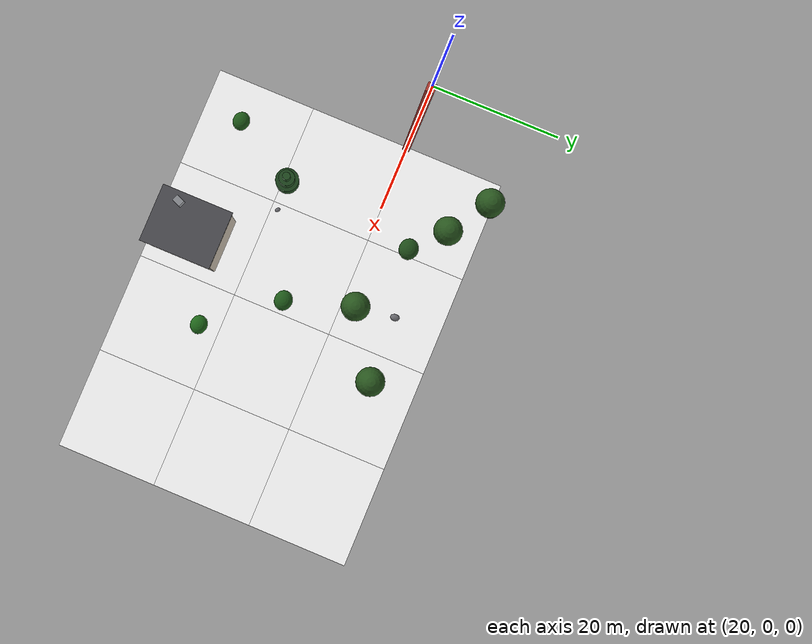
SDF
<sdf version="1.9">
 <world name="iris_runway">
  <model name="ground">
   <static>true</static>
   <link name="link">
    <collision name="c">
     <geometry><plane><normal>0 0 1</normal><size>2000 2000</size></plane></geometry>
    </collision>
   </link>
  </model>
  <include>
   <name>g_8_4</name>
   <pose degrees="true">37.5 -22.5 0.01 0 0 90</pose>
   <uri>model://grass_tile</uri>
  </include>
  <include>
   <name>g_8_5</name>
   <pose degrees="true">37.5 -7.5 0.01 0 0 270</pose>
   <uri>model://grass_tile</uri>
  </include>
  <include>
   <name>g_8_6</name>
   <pose degrees="true">37.5 7.5 0.01 0 0 90</pose>
   <uri>model://grass_tile</uri>
  </include>
  <include>
   <name>g_9_4</name>
   <pose degrees="true">52.5 -22.5 0.01 0 0 270</pose>
   <uri>model://grass_tile</uri>
  </include>
  <include>
   <name>g_9_5</name>
   <pose degrees="true">52.5 -7.5 0.01 0 0 90</pose>
   <uri>model://grass_tile</uri>
  </include>
  <include>
   <name>g_9_6</name>
   <pose degrees="true">52.5 7.5 0.01 0 0 270</pose>
   <uri>model://grass_tile_worn</uri>
  </include>
  <include>
   <name>g_10_4</name>
   <pose degrees="true">67.5 -22.5 0.01 0 0 90</pose>
   <uri>model://grass_tile</uri>
  </include>
  <include>
   <name>g_10_5</name>
   <pose degrees="true">67.5 -7.5 0.01 0 0 270</pose>
   <uri>model://grass_tile</uri>
  </include>
  <include>
   <name>g_10_6</name>
   <pose degrees="true">67.5 7.5 0.01 0 0 90</pose>
   <uri>model://grass_tile_worn</uri>
  </include>
  <include>
   <name>g_11_4</name>
   <pose degrees="true">82.5 -22.5 0.01 0 0 0</pose>
   <uri>model://grass_tile</uri>
  </include>
  <include>
   <name>g_11_5</name>
   <pose degrees="true">82.5 -7.5 0.01 0 0 180</pose>
   <uri>model://grass_tile</uri>
  </include>
  <include>
   <name>g_11_6</name>
   <pose degrees="true">82.5 7.5 0.01 0 0 0</pose>
   <uri>model://grass_tile</uri>
  </include>
  <include><name>tree_4</name><pose>40 10 0 0 0 2.8</pose><uri>model://tree_oak</uri></include>
  <include><name>tree_5</name><pose>42 -14 0 0 0 0.4</pose><uri>model://tree_pine</uri></include>
  <include><name>tree_14</name><pose>55 2 0 0 0 0.5</pose><uri>model://tree_oak</uri></include>
  <include><name>tree_24</name><pose>34 14 0 0 0 1.3</pose><uri>model://tree_oak</uri></include>
  <include><name>tree_32</name><pose>64 8 0 0 0 0.7</pose><uri>model://tree_oak</uri></include>
  <model name="bldg_14">
   <static>true</static>
   <pose>54 -24 0 0 0 0</pose>
   <link name="l">
    <visual name="walls">
     <pose degrees="true">0 0 3.5 0 0 0</pose>
     <geometry><box><size>8 10 7</size></box></geometry>
     <material>
      <ambient>0.39 0.36 0.33 1</ambient>
      <diffuse>0.70 0.66 0.60 1</diffuse>
      <pbr><metal><roughness>0.85</roughness><metalness>0.0</metalness></metal></pbr>
     </material>
    </visual>
    <visual name="roof">
     <pose degrees="true">0 0 7.15 0 0 0</pose>
     <geometry><box><size>8.5 10.5 0.3</size></box></geometry>
     <material>
      <ambient>0.17 0.17 0.18 1</ambient>
      <diffuse>0.30 0.30 0.32 1</diffuse>
      <pbr><metal><roughness>0.9</roughness><metalness>0.0</metalness></metal></pbr>
     </material>
    </visual>
    <collision name="c">
     <pose>0 0 3.65 0 0 0</pose>
     <geometry><box><size>8 10 7.3</size></box></geometry>
    </collision>
    <visual name="ac_0">
     <pose degrees="true">-2.8 -2.2 7.75 0 0 68</pose>
     <geometry><box><size>1.3 1.0 0.9</size></box></geometry>
     <material>
      <ambient>0.30 0.31 0.32 1</ambient>
      <diffuse>0.55 0.56 0.58 1</diffuse>
      <pbr><metal><roughness>0.5</roughness><metalness>0.6</metalness></metal></pbr>
     </material>
    </visual>
   </link>
  </model>
  <model name="tower_0">
   <static>true</static>
   <pose>30 0 0 0 0 0</pose>
   <link name="l">
    <visual name="mast">
     <pose degrees="true">0 0 14.0 0 0 0</pose>
     <geometry><box><size>1.1 1.1 28.0</size></box></geometry>
     <material>
      <ambient>0.40 0.13 0.11 1</ambient>
      <diffuse>0.72 0.24 0.20 1</diffuse>
      <pbr><metal><roughness>0.6</roughness><metalness>0.4</metalness></metal></pbr>
     </material>
    </visual>
    <collision name="c">
     <pose>0 0 14.0 0 0 0</pose>
     <geometry><box><size>1.3 1.3 28.0</size></box></geometry>
    </collision>
    <visual name="arm_0">
     <pose degrees="true">0 0 9.799999999999999 0 0 0</pose>
     <geometry><box><size>4.0 0.35 0.35</size></box></geometry>
     <material>
      <ambient>0.47 0.47 0.48 1</ambient>
      <diffuse>0.85 0.86 0.88 1</diffuse>
      <pbr><metal><roughness>0.6</roughness><metalness>0.4</metalness></metal></pbr>
     </material>
    </visual>
    <visual name="arm_1">
     <pose degrees="true">0 0 16.8 0 0 0</pose>
     <geometry><box><size>4.0 0.35 0.35</size></box></geometry>
     <material>
      <ambient>0.47 0.47 0.48 1</ambient>
      <diffuse>0.85 0.86 0.88 1</diffuse>
      <pbr><metal><roughness>0.6</roughness><metalness>0.4</metalness></metal></pbr>
     </material>
    </visual>
    <visual name="arm_2">
     <pose degrees="true">0 0 23.8 0 0 0</pose>
     <geometry><box><size>4.0 0.35 0.35</size></box></geometry>
     <material>
      <ambient>0.47 0.47 0.48 1</ambient>
      <diffuse>0.85 0.86 0.88 1</diffuse>
      <pbr><metal><roughness>0.6</roughness><metalness>0.4</metalness></metal></pbr>
     </material>
    </visual>
   </link>
  </model>
  <model name="pond">
   <static>true</static>
   <pose>44 -8 0.015 0 0 0</pose>
   <link name="l">
    <visual name="v">
     <geometry><plane><normal>0 0 1</normal><size>26 16</size></plane></geometry>
     <material>
      <ambient>0.05 0.10 0.12 1</ambient>
      <diffuse>0.10 0.22 0.28 1</diffuse>
      <specular>0.6 0.65 0.7 1</specular>
      <pbr><metal><roughness>0.15</roughness><metalness>0.0</metalness></metal></pbr>
     </material>
    </visual>
   </link>
  </model>
  <model name="bush_4">
   <static>true</static>
   <pose>36 -24 0.63 0 0 0</pose>
   <link name="l">
    <visual name="v">
     <geometry><ellipsoid><radii>1.4 1.26 0.84</radii></ellipsoid></geometry>
     <material>
      <ambient>0.07 0.19 0.06 1</ambient>
      <diffuse>0.12 0.35 0.10 1</diffuse>
      <pbr><metal><roughness>0.95</roughness><metalness>0.0</metalness></metal></pbr>
     </material>
    </visual>
   </link>
  </model>
  <model name="bush_6">
   <static>true</static>
   <pose>44 6 0.72 0 0 0</pose>
   <link name="l">
    <visual name="v">
     <geometry><ellipsoid><radii>1.6 1.44 0.96</radii></ellipsoid></geometry>
     <material>
      <ambient>0.07 0.17 0.06 1</ambient>
      <diffuse>0.12 0.30 0.10 1</diffuse>
      <pbr><metal><roughness>0.95</roughness><metalness>0.0</metalness></metal></pbr>
     </material>
    </visual>
   </link>
  </model>
  <model name="bush_16">
   <static>true</static>
   <pose>58 -8 0.68 0 0 0</pose>
   <link name="l">
    <visual name="v">
     <geometry><ellipsoid><radii>1.5 1.35 0.90</radii></ellipsoid></geometry>
     <material>
      <ambient>0.07 0.19 0.06 1</ambient>
      <diffuse>0.12 0.35 0.10 1</diffuse>
      <pbr><metal><roughness>0.95</roughness><metalness>0.0</metalness></metal></pbr>
     </material>
    </visual>
   </link>
  </model>
  <model name="bush_26">
   <static>true</static>
   <pose>66 -18 0.63 0 0 0</pose>
   <link name="l">
    <visual name="v">
     <geometry><ellipsoid><radii>1.4 1.26 0.84</radii></ellipsoid></geometry>
     <material>
      <ambient>0.07 0.22 0.06 1</ambient>
      <diffuse>0.12 0.40 0.10 1</diffuse>
      <pbr><metal><roughness>0.95</roughness><metalness>0.0</metalness></metal></pbr>
     </material>
    </visual>
   </link>
  </model>
  <model name="rock_6">
   <static>true</static>
   <pose degrees="true">46 -14 0.14 0 0 138</pose>
   <link name="l">
    <visual name="v">
     <geometry><ellipsoid><radii>0.4 0.30 0.20</radii></ellipsoid></geometry>
     <material>
      <ambient>0.23 0.23 0.24 1</ambient>
      <diffuse>0.42 0.42 0.44 1</diffuse>
      <pbr><metal><roughness>0.98</roughness><metalness>0.0</metalness></metal></pbr>
     </material>
    </visual>
   </link>
  </model>
  <model name="rock_12">
   <static>true</static>
   <pose degrees="true">54 8 0.24 0 0 96</pose>
   <link name="l">
    <visual name="v">
     <geometry><ellipsoid><radii>0.7 0.52 0.35</radii></ellipsoid></geometry>
     <material>
      <ambient>0.23 0.23 0.24 1</ambient>
      <diffuse>0.42 0.42 0.44 1</diffuse>
      <pbr><metal><roughness>0.98</roughness><metalness>0.0</metalness></metal></pbr>
     </material>
    </visual>
   </link>
  </model>
 </world>
</sdf>
